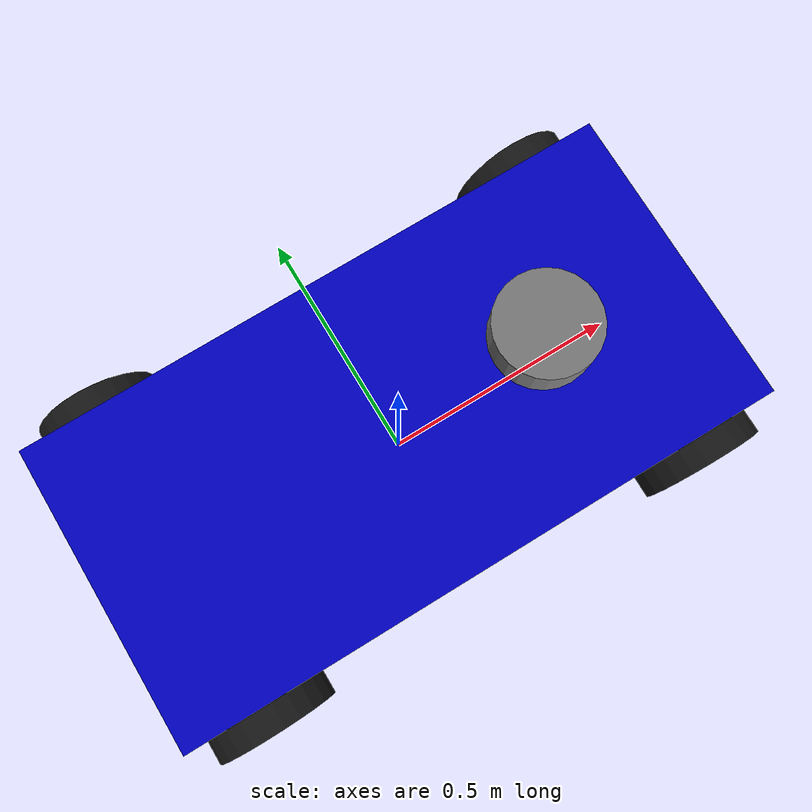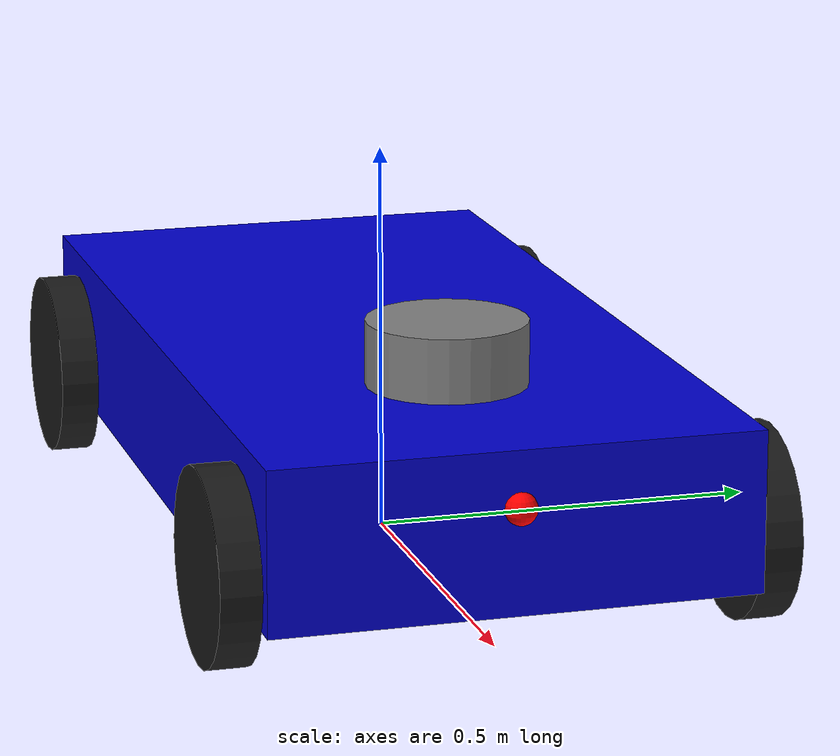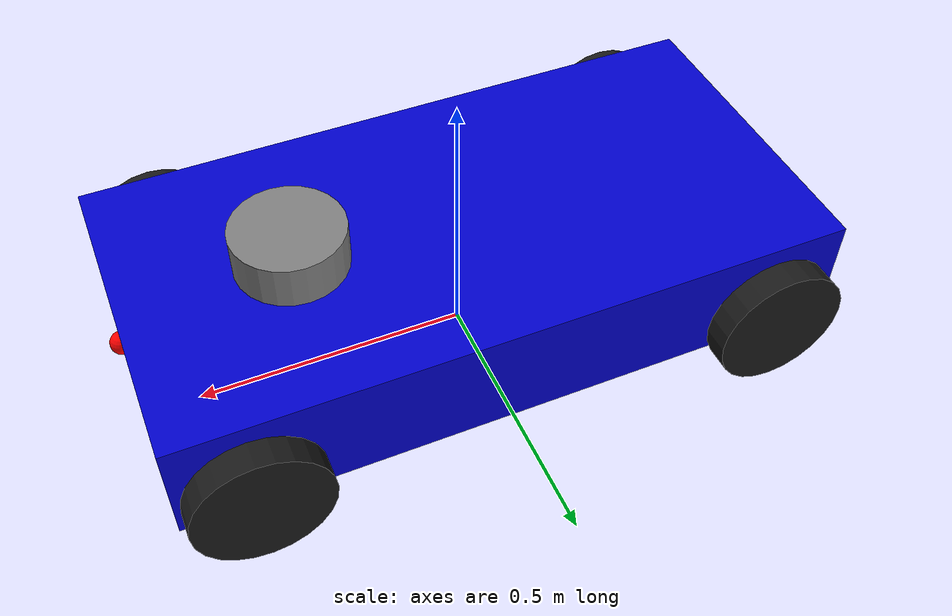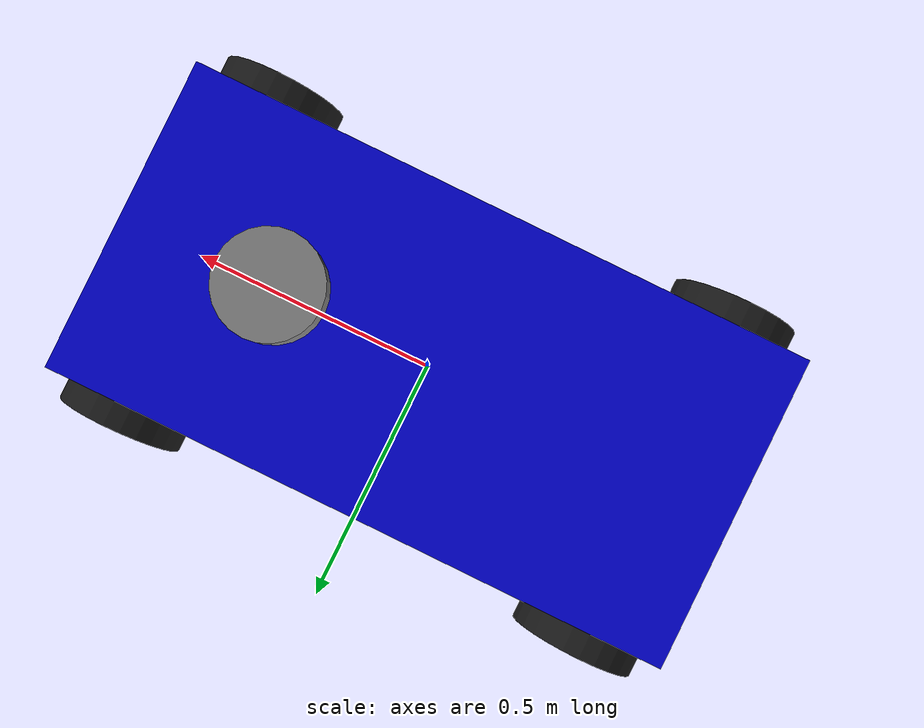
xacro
<?xml version="1.0"?>
<robot xmlns:xacro="http://ros.org/wiki/xacro" name="autocar">

  <!-- Parameters -->
  <xacro:property name="chassis_length" value="1.2"/>
  <xacro:property name="chassis_width"  value="0.6"/>
  <xacro:property name="chassis_height" value="0.2"/>
  <xacro:property name="wheel_radius"   value="0.12"/>
  <xacro:property name="wheel_width"    value="0.05"/>
  <xacro:property name="wheel_mass"     value="2.0"/>
  <xacro:property name="chassis_mass"   value="30.0"/>
  <xacro:property name="zero"           value="0.0"/>

  <!-- Base link (Chassis) -->
  <link name="base_link">
    <visual>
      <origin xyz="0 0 ${chassis_height/2+0.07}" rpy="0 0 0"/>
      <geometry>
        <box size="${chassis_length} ${chassis_width} ${chassis_height}"/>
      </geometry>
      <material name="blue">
        <color rgba="0.0 0.0 0.8 1.0"/>
      </material>
    </visual>

    <collision>
      <origin xyz="0 0 ${chassis_height/2+0.07}" rpy="0 0 0"/>
      <geometry>
        <box size="${chassis_length} ${chassis_width} ${chassis_height}"/>
      </geometry>
    </collision>

    <inertial>
      <mass value="${chassis_mass}"/>
      <inertia ixx="1" iyy="3.7" izz="4.5"
               ixy="0.0" ixz="0.0" iyz="0.0"/>
    </inertial>
  </link>

  <!-- Wheels (4 independent powered) -->
  <xacro:macro name="wheel" params="name x y">
    <link name="${name}_wheel">
      <visual>
        <origin xyz="0 0 0" rpy="1.5708 0 0"/>
        <geometry>
          <cylinder radius="${wheel_radius}" length="${wheel_width}"/>
        </geometry>
        <material name="black">
          <color rgba="0.1 0.1 0.1 1.0"/>
        </material>
      </visual>

      <collision>
        <origin xyz="0 0 0" rpy="1.5708 0 0"/>
        <geometry>
          <cylinder radius="${wheel_radius}" length="${wheel_width}"/>
        </geometry>
      </collision>

      <inertial>
        <mass value="${wheel_mass}"/>
        <inertia ixx="0.0076" iyy="0.0144" izz="0.0076"
                 ixy="0.0" ixz="0.0" iyz="0.0"/>
      </inertial>
    </link>

    <!-- Revolute joint to chassis -->
    <joint name="${name}_wheel_joint" type="continuous">
      <parent link="base_link"/>
      <child link="${name}_wheel"/>
      <origin xyz="${x} ${y} ${wheel_radius}" rpy="0 0 0"/>
      <axis xyz="0 1 0"/>
    </joint>

    <!-- Transmission for ros_control -->
    <transmission name="${name}_trans">
      <type>transmission_interface/SimpleTransmission</type>
      <joint name="${name}_wheel_joint">
        <hardwareInterface>VelocityJointInterface</hardwareInterface>
      </joint>
      <actuator name="${name}_motor">
        <hardwareInterface>VelocityJointInterface</hardwareInterface>
        <mechanicalReduction>1</mechanicalReduction>
      </actuator>
    </transmission>

  </xacro:macro>

  <!-- Place 4 wheels -->
  <xacro:wheel name="front_left"  x="0.47"  y="0.327"/>
  <xacro:wheel name="front_right" x="0.47"  y="-0.327"/>
  <xacro:wheel name="rear_left"   x="-0.47" y="0.327"/>
  <xacro:wheel name="rear_right"  x="-0.47" y="-0.327"/>

  <!-- Sensors -->

  <!-- 3D LiDAR -->
  <link name="lidar_link">
    <visual>
      <origin xyz="0 0 0" rpy="0 0 0"/>
      <geometry>
        <cylinder radius="0.1" length="0.1"/>
      </geometry>
      <material name="grey">
        <color rgba="0.5 0.5 0.5 1"/>
      </material>
    </visual>
  </link>
  <joint name="lidar_joint" type="fixed">
    <parent link="base_link"/>
    <child link="lidar_link"/>
    <origin xyz="0.3 0 ${chassis_height+0.1}" rpy="0 0 0"/>
  </joint>

  <!-- Camera -->
  <link name="camera_link">
    <visual>
      <origin xyz="0 0 0" rpy="0 0 0"/>
      <geometry>
        <sphere radius="0.02"/>
      </geometry>
      <material name="red">
        <color rgba="1 0 0 1"/>
      </material>
    </visual>
  </link>
  <joint name="camera_joint" type="fixed">
    <parent link="base_link"/>
    <child link="camera_link"/>
    <origin xyz="0.6 0 ${chassis_height}" rpy="0 0 0"/>
  </joint>

  <!-- IMU -->
  <link name="imu_link"/>
  <joint name="imu_joint" type="fixed">
    <parent link="base_link"/>
    <child link="imu_link"/>
    <origin xyz="-0.3 0.1 ${chassis_height}" rpy="0 0 0"/>
  </joint>

  <!-- GPS -->
  <link name="gps_link"/>
  <joint name="gps_joint" type="fixed">
    <parent link="base_link"/>
    <child link="gps_link"/>
    <origin xyz="-0.3 -0.1 ${chassis_height}" rpy="0 0 0"/>
  </joint>

  <!-- Odometry frame -->
  <link name="odom"/>
  <joint name="odom_joint" type="fixed">
    <parent link="odom"/>
    <child link="base_link"/>
  </joint>

</robot>
